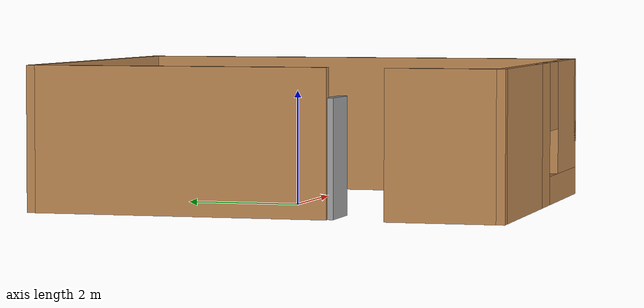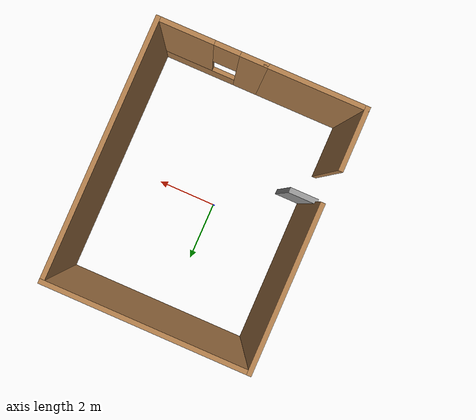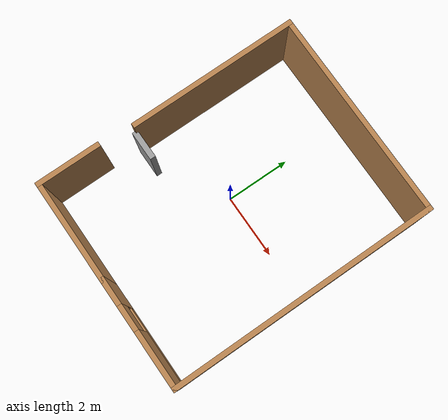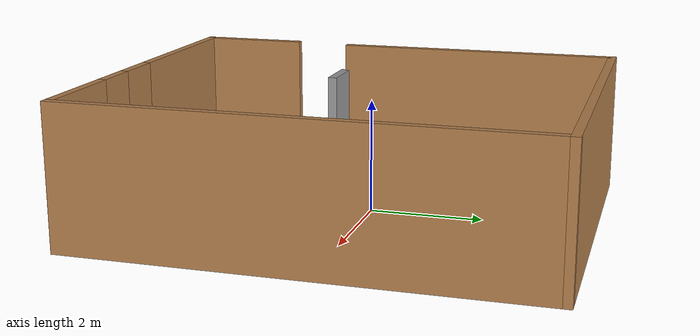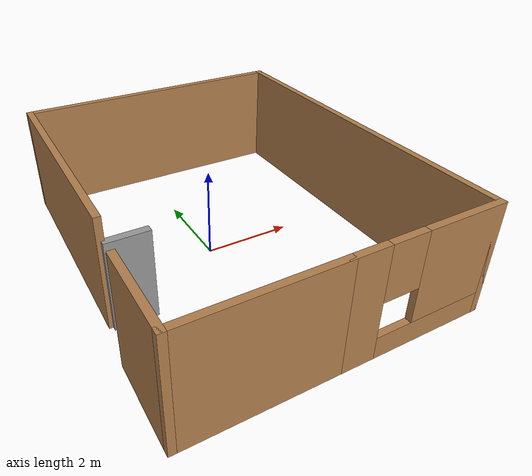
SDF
<?xml version='1.0'?>
<sdf version='1.7'>
  <model name='Hospital_room'>
    <pose>0.3882 -0.1588 0 0 -0 0</pose>
    <link name='Door_0'>
      <collision name='Door_0_Collision'>
        <geometry>
          <box>
            <size>0.9 0.17 2</size>
          </box>
        </geometry>
        <pose>0 0 1 0 -0 0</pose>
      </collision>
      <visual name='Door_0_Visual'>
        <pose>0 0 1 0 -0 0</pose>
        <geometry>
          <box>
            <size>0.9 0.17 2</size>
          </box>
        </geometry>
        <material>
          <script>
            <uri>file://media/materials/scripts/gazebo.material</uri>
            <name>Gazebo/Grey</name>
          </script>
        </material>
      </visual>
      <pose>-2.66668 -1.13911 0 0 -0 0</pose>
    </link>
    <link name='Wall_10'>
      <collision name='Wall_10_Collision'>
        <geometry>
          <box>
            <size>6.5 0.15 2.5</size>
          </box>
        </geometry>
        <pose>0 0 1.25 0 -0 0</pose>
      </collision>
      <visual name='Wall_10_Visual'>
        <pose>0 0 1.25 0 -0 0</pose>
        <geometry>
          <box>
            <size>6.5 0.15 2.5</size>
          </box>
        </geometry>
        <material>
          <script>
            <uri>file://media/materials/scripts/gazebo.material</uri>
            <name>Gazebo/Wood</name>
          </script>
          <ambient>1 1 1 1</ambient>
        </material>
        <meta>
          <layer>0</layer>
        </meta>
      </visual>
      <pose>0.05 4.05 0 0 -0 3.14159</pose>
    </link>
    <link name='Wall_11'>
      <collision name='Wall_11_Collision'>
        <geometry>
          <box>
            <size>5.25 0.15 2.5</size>
          </box>
        </geometry>
        <pose>0 0 1.25 0 -0 0</pose>
      </collision>
      <visual name='Wall_11_Visual'>
        <pose>0 0 1.25 0 -0 0</pose>
        <geometry>
          <box>
            <size>5.25 0.15 2.5</size>
          </box>
        </geometry>
        <material>
          <script>
            <uri>file://media/materials/scripts/gazebo.material</uri>
            <name>Gazebo/Wood</name>
          </script>
          <ambient>1 1 1 1</ambient>
        </material>
        <meta>
          <layer>0</layer>
        </meta>
      </visual>
      <pose>-3.125 1.5 0 0 -0 -1.5708</pose>
    </link>
    <link name='Wall_13'>
      <collision name='Wall_13_Collision'>
        <geometry>
          <box>
            <size>2 0.15 2.5</size>
          </box>
        </geometry>
        <pose>0 0 1.25 0 -0 0</pose>
      </collision>
      <visual name='Wall_13_Visual'>
        <pose>0 0 1.25 0 -0 0</pose>
        <geometry>
          <box>
            <size>2 0.15 2.5</size>
          </box>
        </geometry>
        <material>
          <script>
            <uri>file://media/materials/scripts/gazebo.material</uri>
            <name>Gazebo/Wood</name>
          </script>
          <ambient>1 1 1 1</ambient>
        </material>
        <meta>
          <layer>0</layer>
        </meta>
      </visual>
      <pose>-3.225 -3.125 0 0 -0 1.5708</pose>
    </link>
    <link name='Wall_6'>
      <collision name='Wall_6_Collision'>
        <geometry>
          <box>
            <size>3.25 0.15 2.5</size>
          </box>
        </geometry>
        <pose>0 0 1.25 0 -0 0</pose>
      </collision>
      <visual name='Wall_6_Visual'>
        <pose>0 0 1.25 0 -0 0</pose>
        <geometry>
          <box>
            <size>3.25 0.15 2.5</size>
          </box>
        </geometry>
        <material>
          <script>
            <uri>file://media/materials/scripts/gazebo.material</uri>
            <name>Gazebo/Wood</name>
          </script>
          <ambient>1 1 1 1</ambient>
        </material>
        <meta>
          <layer>0</layer>
        </meta>
      </visual>
      <pose>-1.675 -4.05 0 0 -0 3.14159</pose>
    </link>
    <link name='Wall_8'>
      <pose>1.55 -4.05 0 0 -0 0</pose>
      <visual name='Wall_8_Visual_0'>
        <pose>-1.31734 0 1.25 0 -0 0</pose>
        <geometry>
          <box>
            <size>0.865327 0.15 2.5</size>
          </box>
        </geometry>
        <material>
          <script>
            <uri>file://media/materials/scripts/gazebo.material</uri>
            <name>Gazebo/Wood</name>
          </script>
          <ambient>1 1 1 1</ambient>
        </material>
        <meta>
          <layer>0</layer>
        </meta>
      </visual>
      <collision name='Wall_8_Collision_0'>
        <geometry>
          <box>
            <size>0.865327 0.15 2.5</size>
          </box>
        </geometry>
        <pose>-1.31734 0 1.25 0 -0 0</pose>
      </collision>
      <visual name='Wall_8_Visual_1'>
        <pose>0.432664 0 0.25 0 -0 0</pose>
        <geometry>
          <box>
            <size>2.63467 0.15 0.5</size>
          </box>
        </geometry>
        <material>
          <script>
            <uri>file://media/materials/scripts/gazebo.material</uri>
            <name>Gazebo/Wood</name>
          </script>
          <ambient>1 1 1 1</ambient>
        </material>
        <meta>
          <layer>0</layer>
        </meta>
      </visual>
      <collision name='Wall_8_Collision_1'>
        <geometry>
          <box>
            <size>2.63467 0.15 0.5</size>
          </box>
        </geometry>
        <pose>0.432664 0 0.25 0 -0 0</pose>
      </collision>
      <visual name='Wall_8_Visual_2'>
        <pose>0.832664 0 1.5 0 -0 0</pose>
        <geometry>
          <box>
            <size>1.83467 0.15 2</size>
          </box>
        </geometry>
        <material>
          <script>
            <uri>file://media/materials/scripts/gazebo.material</uri>
            <name>Gazebo/Wood</name>
          </script>
          <ambient>1 1 1 1</ambient>
        </material>
        <meta>
          <layer>0</layer>
        </meta>
      </visual>
      <collision name='Wall_8_Collision_2'>
        <geometry>
          <box>
            <size>1.83467 0.15 2</size>
          </box>
        </geometry>
        <pose>0.832664 0 1.5 0 -0 0</pose>
      </collision>
      <visual name='Wall_8_Visual_3'>
        <pose>-0.484673 0 1.9 0 -0 0</pose>
        <geometry>
          <box>
            <size>0.8 0.15 1.2</size>
          </box>
        </geometry>
        <material>
          <script>
            <uri>file://media/materials/scripts/gazebo.material</uri>
            <name>Gazebo/Wood</name>
          </script>
          <ambient>1 1 1 1</ambient>
        </material>
        <meta>
          <layer>0</layer>
        </meta>
      </visual>
      <collision name='Wall_8_Collision_3'>
        <geometry>
          <box>
            <size>0.8 0.15 1.2</size>
          </box>
        </geometry>
        <pose>-0.484673 0 1.9 0 -0 0</pose>
      </collision>
    </link>
    <link name='Wall_9'>
      <collision name='Wall_9_Collision'>
        <geometry>
          <box>
            <size>8.25 0.15 2.5</size>
          </box>
        </geometry>
        <pose>0 0 1.25 0 -0 0</pose>
      </collision>
      <visual name='Wall_9_Visual'>
        <pose>0 0 1.25 0 -0 0</pose>
        <geometry>
          <box>
            <size>8.25 0.15 2.5</size>
          </box>
        </geometry>
        <material>
          <script>
            <uri>file://media/materials/scripts/gazebo.material</uri>
            <name>Gazebo/Wood</name>
          </script>
          <ambient>1 1 1 1</ambient>
        </material>
        <meta>
          <layer>0</layer>
        </meta>
      </visual>
      <pose>3.225 0 0 0 -0 1.5708</pose>
    </link>
    <static>1</static>
  </model>
</sdf>
